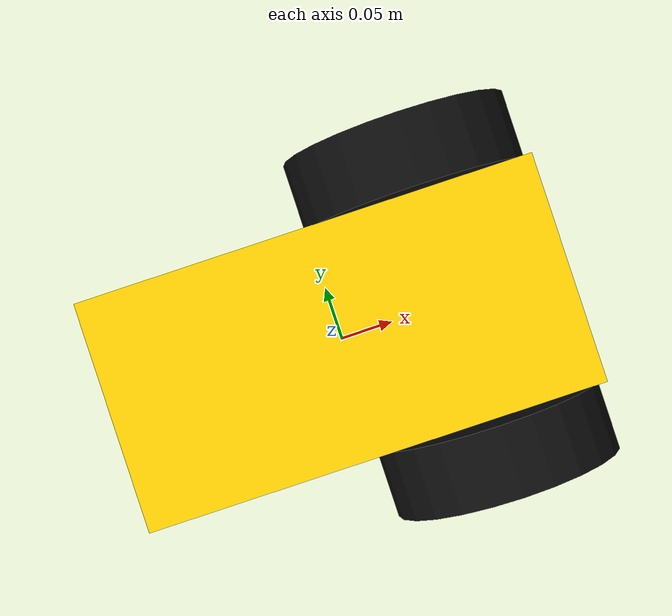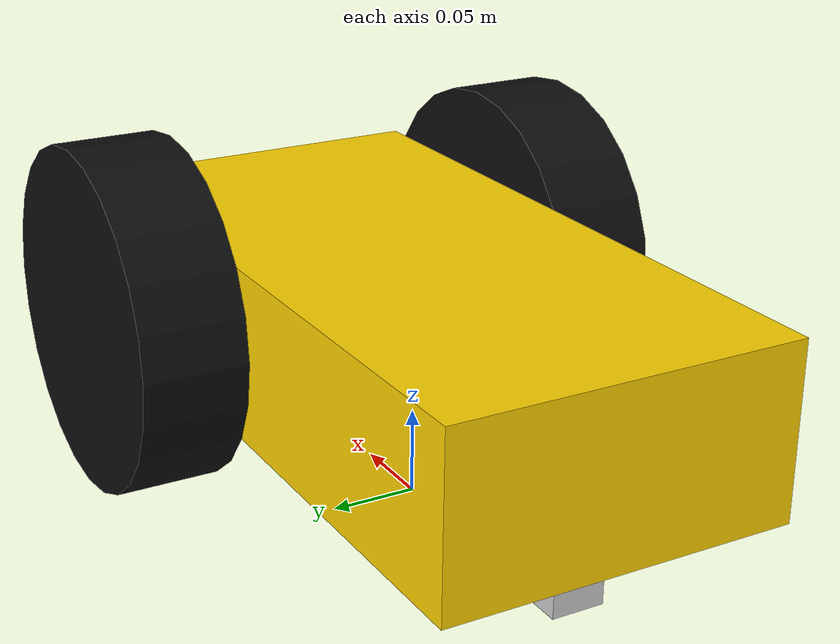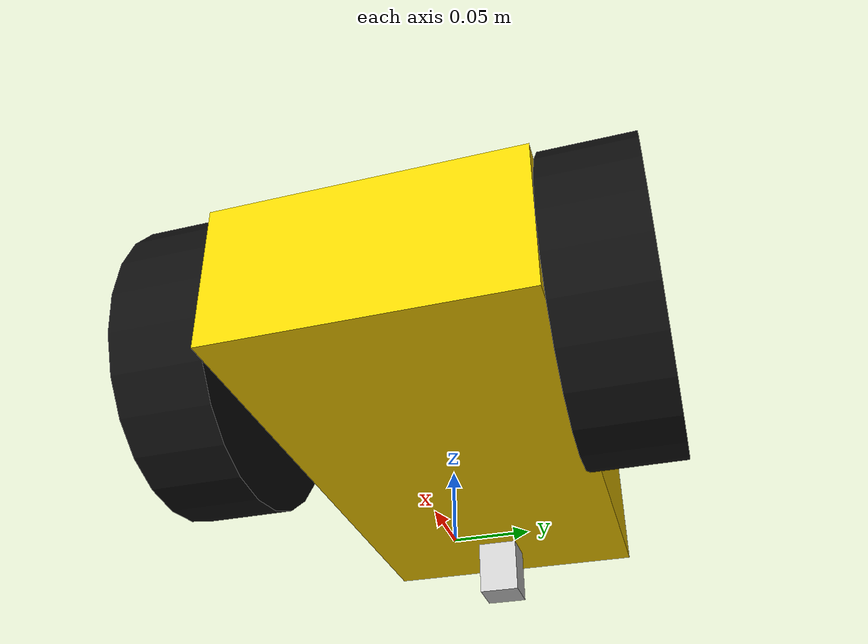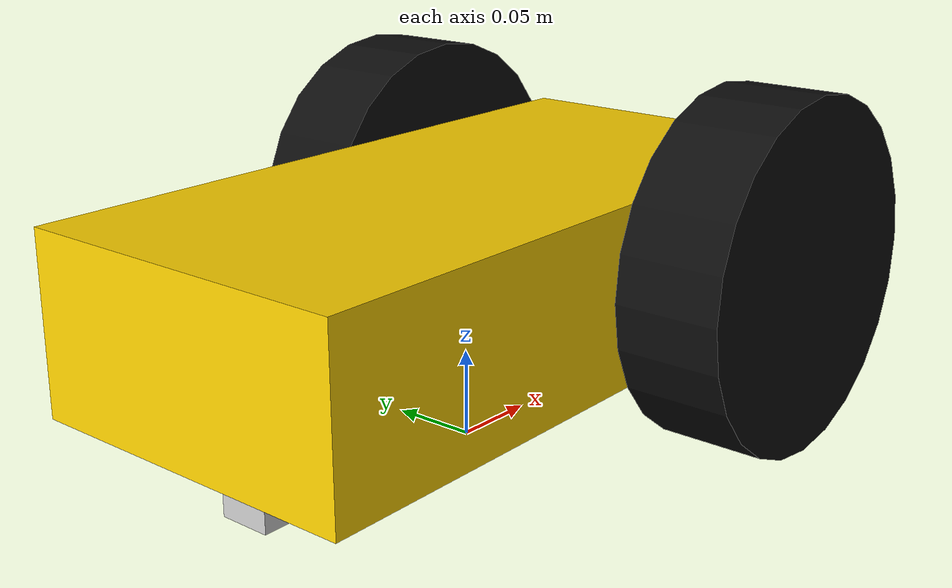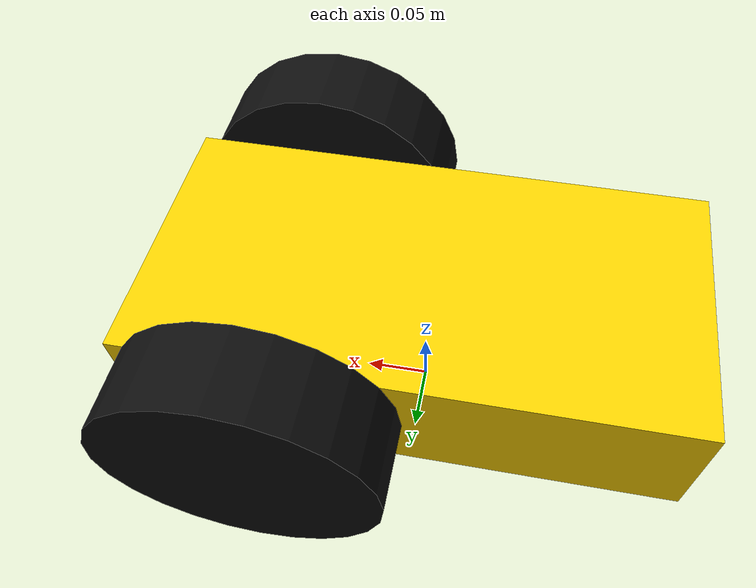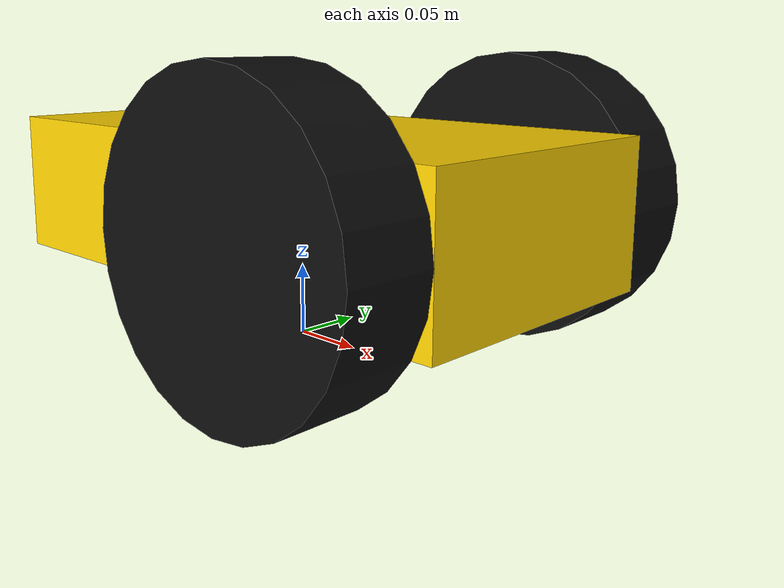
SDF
<?xml version="1.0" ?>
<sdf version="1.7">

  <model name="latty_chassis">
    <pose>0 0 0 0 0 0</pose>
    <static>false</static>

    <!-- Chassis link -->
    <link name="chassis">
      <pose>0 0 0.1 0 0 0</pose> <!-- lifted to sit on wheels -->
      <collision name="collision">
        <geometry>
          <box><size>0.4 0.2 0.1</size></box>
        </geometry>
      </collision>
      <visual name="visual">
        <geometry>
          <box><size>0.4 0.2 0.1</size></box>
        </geometry>
        <material>
          <ambient>1.0 0.827 0.0 1</ambient>
          <diffuse>1.0 0.827 0.0 1</diffuse>
          <specular>0.3 0.3 0.3 1</specular>
        </material>
      </visual>
      <inertial>
        <mass>10.0</mass>
        <inertia>
          <ixx>0.5</ixx>
          <iyy>1.0</iyy>
          <izz>0.1</izz>
        </inertia>
      </inertial>
    </link>

  <!-- Front-center steering knuckle -->
  <link name="front_center_steer_link">
    <pose>-0.15 0 0.03 0 0 0</pose> <!-- same location as the caster -->
    <inertial>
      <mass>0.5</mass>
      <inertia>
        <ixx>0.001</ixx>
        <iyy>0.001</iyy>
        <izz>0.001</izz>
      </inertia>
    </inertial>

    <!-- Knuckle visual -->
    <visual name="front_center_knuckle_visual">
      <geometry>
        <box>
          <size>0.03 0.03 0.04</size> <!-- small cube-shaped block -->
        </box>
      </geometry>
      <material>
        <ambient>0.8 0.8 0.8 1</ambient> <!-- bluish block -->
        <diffuse>0.8 0.8 0.8 1</diffuse>
        <specular>0.3 0.3 0.3 1</specular>
      </material>
    </visual>

    <!-- Knuckle collision (optional for realism) -->
    <collision name="front_center_knuckle_collision">
      <geometry>
        <box>
          <size>0.06 0.03 0.06</size>
        </box>
      </geometry>
    </collision>
  </link>

    <!-- Left Wheel Link -->
    <link name="Left_Wheel">
      <pose>0.1 0.13 0.1 0 1.5707 1.5707</pose> <!-- wheel center at z = radius -->
      <collision name="collision">
        <geometry>
          <cylinder>
            <length>0.06</length>
            <radius>0.1</radius>
          </cylinder>
        </geometry>
      </collision>
      <visual name="visual">
        <geometry>
          <cylinder>
            <length>0.06</length>
            <radius>0.1</radius>
          </cylinder>
        </geometry>
        <material>
          <ambient>0.05 0.05 0.05 1</ambient>
          <diffuse>0.05 0.05 0.05 1</diffuse>
        </material>
      </visual>
      <inertial>
        <mass>2.0</mass>
      </inertial>
    </link>

    <!-- Right Wheel Link -->
    <link name="Right_Wheel">
      <pose>0.1 -0.13 0.1 0 1.5707 1.5707</pose>
      <collision name="collision">
        <geometry>
          <cylinder>
            <length>0.06</length>
            <radius>0.1</radius>
          </cylinder>
        </geometry>
      </collision>
      <visual name="visual">
        <geometry>
          <cylinder>
            <length>0.06</length>
            <radius>0.1</radius>
          </cylinder>
        </geometry>
        <material>
          <ambient>0.05 0.05 0.05 1</ambient>
          <diffuse>0.05 0.05 0.05 1</diffuse>
        </material>
      </visual>
      <inertial>
        <mass>2.0</mass>
      </inertial>
    </link>

  <!-- Steering joint: chassis <-> knuckle -->
  <joint name="front_center_steer_joint" type="revolute">
    <parent>chassis</parent>
    <child>front_center_steer_link</child>
    <pose>0 0 0 0 0 0</pose> <!-- same location as knuckle -->
    <axis>
      <xyz>0 0 1</xyz> <!-- rotation about Z axis (yaw steering) -->
      <limit>
        <lower>-0.785</lower>   <!-- -45 degrees -->
        <upper> 0.785</upper>   <!-- +45 degrees -->
        <effort>10</effort>
        <velocity>3</velocity>
      </limit>
      <dynamics>
        <damping>0.5</damping> <!-- prevents oscillation -->
      </dynamics>
    </axis>
  </joint>

    <!-- Left wheel joint -->
    <joint name="left_wheel_joint" type="revolute">
      <parent>chassis</parent>
      <child>Left_Wheel</child>
      <pose>0 0 -0.03 0 0 0</pose>
      <axis>
        <xyz>0 0 1</xyz>
        <limit>
          <effort>5</effort>
          <velocity>10</velocity>
        </limit>
        <dynamics>
          <damping>0.1</damping>
          <friction>0.01</friction>
        </dynamics>
      </axis>
    </joint>

    <!-- Right wheel joint -->
    <joint name="right_wheel_joint" type="revolute">
      <parent>chassis</parent>
      <child>Right_Wheel</child>
      <pose>0 0 0.03 0 0 0</pose>
      <axis>
        <xyz>0 0 1</xyz>
        <limit>
          <effort>5</effort>
          <velocity>10</velocity>
        </limit>
        <dynamics>
          <damping>0.1</damping>
          <friction>0.01</friction>
        </dynamics>
      </axis>
    </joint>

    <!-- Diff Drive Plugin -->
    <plugin name="diff_drive" filename="libgazebo_ros_diff_drive.so">
      <ros>
        <namespace>/latty</namespace>
        <remapping>cmd_vel:=cmd_vel</remapping>
        <remapping>odom:=odom</remapping>
      </ros>
      <left_joint>left_wheel_joint</left_joint>
      <right_joint>right_wheel_joint</right_joint>
      <wheel_separation>0.34</wheel_separation>  <!-- distance between wheels -->
      <wheel_diameter>0.14</wheel_diameter>
      <odom_frame>odom</odom_frame>
      <base_frame>chassis</base_frame>
      <publish_odom>true</publish_odom>
      <publish_tf>true</publish_tf>
      <update_rate>50</update_rate>
    </plugin>

  </model>
</sdf>
